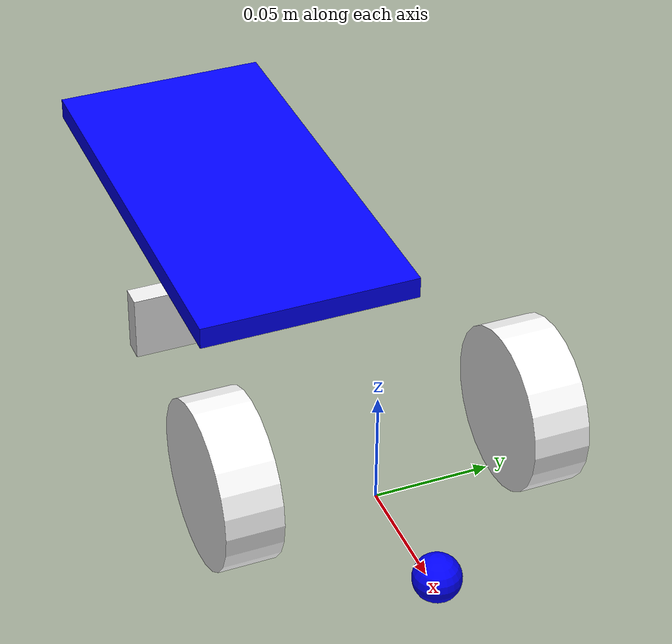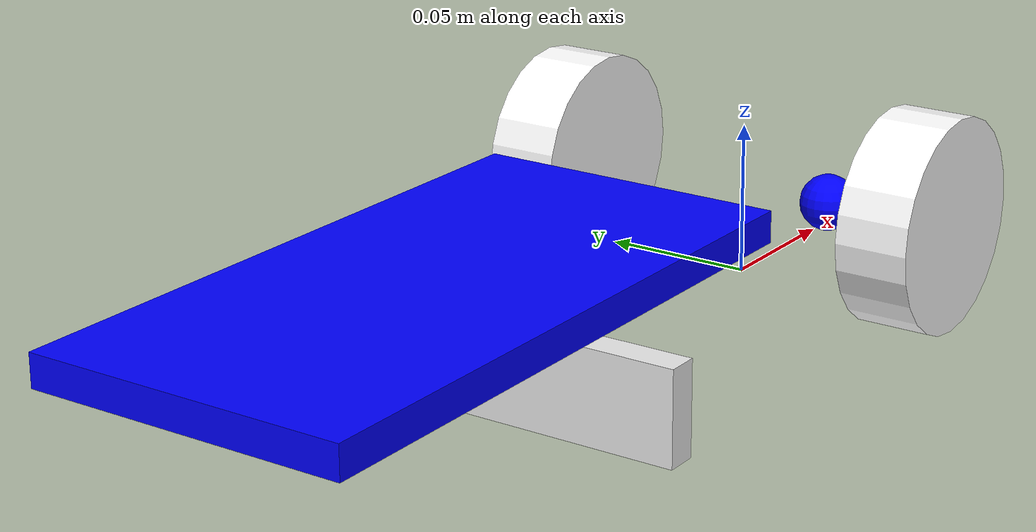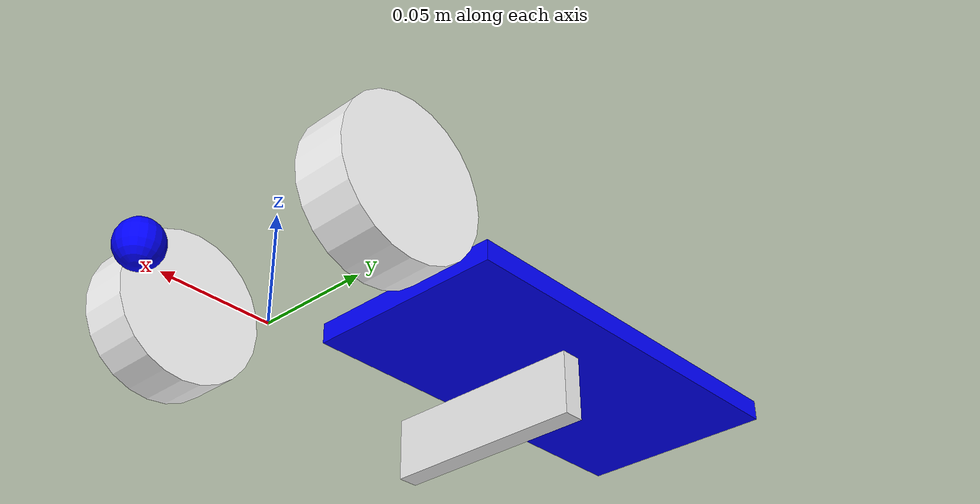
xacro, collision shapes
<?xml version="1.0"?>
<robot xmlns:xacro="http://www.ros.org/wiki/xacro" >

    <xacro:property name="wheelSeparation" value="0.13"/>
    <xacro:property name="wheelDiameter" value="0.07"/>
    <xacro:property name="wheelThickness" value="0.024"/>
    <xacro:property name="base_elevation" value="0.005"/>

    <material name="white">
        <color rgba="1 1 1 1" />
    </material>

    <material name="blue">
        <color rgba="0.2 0.2 1 1"/>
    </material>

    <material name="black">
        <color rgba="0 0 0 1"/>
    </material>

    <!-- BASE LINK -->
    <!-- se encuentra en el centro a la altura de la unión de las ruedas -->
    <link name="base_link">

    </link>

    <!-- BASE_FOOTPRINT LINK -->

    <joint name="base_footprint_joint" type="fixed">
        <parent link="base_link"/>
        <child link="base_footprint"/>
        <origin xyz="0 0 0" rpy="0 0 0"/>
    </joint>

    <link name="base_footprint">
    </link>

    <!-- CHASSIS LINK -->

    <joint name="chassis_joint" type="fixed">
        <parent link="base_link"/>
        <child link="chassis"/>
        <origin xyz="0 0 ${base_elevation}" rpy="0 0 0"/>
    </joint>

    <link name="chassis">
        <visual>
            <origin xyz="-0.17 -0.055 0.04" rpy="${-pi/2} 0 0"/>
            <geometry>
                <mesh filename="package://pibotj_r2c/meshes/base.stl" scale="0.001 0.001 0.001"/>
            </geometry>
            <material name="blue">
                <color rgba="${0/255} ${0/255} ${255/255} 1.0"/>
            </material>
        </visual>
        <collision>
            <origin xyz="-0.17 0 0.04" rpy="0 0 0"/>
            <geometry>
                <box size="0.2 0.1 0.01"/>
            </geometry>
        </collision>
        <!-- Collision tag added to stabilize the robot -->
        <collision>
            <origin xyz="0.06 0 0.002" rpy="0 0 0" />
             <geometry>
            <sphere radius="0.01" />
         </geometry>
        </collision>
        <inertial>
            <origin xyz="0 0 ${wheelDiameter-base_elevation}" rpy="0 0 0"/>
            <mass value="100"/>
            <inertia ixx="3.375" ixy="0.0" ixz="0.0" iyy="0.808" iyz="0.0" izz="2.833" />
         </inertial>
    </link>

    <gazebo reference="chassis">
        <material>Gazebo/Blue</material>
    </gazebo>

    <!-- LEFT WHEEL LINK -->

    <joint name="left_wheel_joint" type="continuous">
        <parent link="base_link"/>
        <child link="left_wheel"/>
        <origin xyz="0 ${wheelSeparation/2} ${wheelDiameter/2-base_elevation}" rpy="${-pi/2} 0 0"/>
        <axis xyz="0 0 1"/>
    </joint>

    <link name="left_wheel">
        <visual>
            <origin xyz="0 0 0.015" rpy="0 0 0"/>
            <geometry>
                <mesh filename="package://pibotj_r2c/meshes/wheel_ring.stl" scale="0.9 0.9 0.9"/>
            </geometry>
            <material name="white"/>
        </visual>
        <collision>
            <origin xyz="0 0 0" rpy="0 0 0"/>
            <geometry>
            <cylinder length="${wheelThickness}" radius="${wheelDiameter/2}"/>
        </geometry>
        </collision>
        <inertial>
            <origin xyz="0 0 0" />
            <mass value="5" />
            <inertia ixx="0.0135417" ixy="0.0" ixz="0.0"  iyy="0.0135417" iyz="0.0"  izz="0.025" />
            </inertial>
    </link>

    <gazebo reference="left_wheel">
        <material>Gazebo/Black</material>
    </gazebo>

    <!-- RIGHT WHEEL LINK -->

    <joint name="right_wheel_joint" type="continuous">
        <parent link="base_link"/>
        <child link="right_wheel"/>
        <origin xyz="0 ${-wheelSeparation/2} ${wheelDiameter/2-base_elevation}" rpy="${-pi/2} 0 0"/>
        <axis xyz="0 0 1"/>
    </joint>

    <link name="right_wheel">
        <visual>
            <origin xyz="0 0 -0.015" rpy="${pi} 0 0"/> <!-- -zy r=PI para la otra rueda-->
            <geometry>
                <mesh filename="package://pibotj_r2c/meshes/wheel_ring.stl" scale="0.9 0.9 0.9"/>
            </geometry>
            <material name="white"/>
        </visual>
        <collision>
            <origin xyz="0 0 0" rpy="0 0 0"/>
            <geometry>
                <cylinder length="${wheelThickness}" radius="${wheelDiameter/2}"/>
            </geometry>
        </collision>
        <inertial>
            <origin xyz="0 0 0" />
            <mass value="5" />
            <inertia ixx="0.0135417" ixy="0.0" ixz="0.0"  iyy="0.0135417" iyz="0.0"  izz="0.025" />
        </inertial>
    </link>

    <gazebo reference="right_wheel">
        <material>Gazebo/Black</material>
    </gazebo>

    <!-- CASTER WHEEL LINK -->

    <joint name="caster_wheel_joint" type="fixed">
        <parent link="chassis"/>
        <child link="caster_wheel"/>
        <origin xyz="-0.135 -0.01 0.006" rpy="0 ${pi} ${pi}" />
    </joint>

    <link name="caster_wheel">
        <visual>
            <origin xyz="0 0 0" rpy="0 0 0" />
            <geometry>
                <mesh filename="package://pibotj_r2c/meshes/bolaloca.stl" scale="0.001 0.001 0.001"/>
            </geometry>
        </visual>
        <collision>
            <origin xyz="0 0 0" rpy="0 0 0" />
            <geometry>
                <box size="0.01 0.1 0.03"/>
            </geometry>
        </collision>
        <inertial>
            <origin xyz="6.93889390390723E-18 -2.62037475051713E-11 -2.77710070911708E-09" rpy="0 0 0" />
            <mass value="10.0" />
            <inertia ixx="0.0006" ixy="0" ixz="0" iyy="0.0006" iyz="0" izz="0.00002" />
        </inertial>
    </link>

    <gazebo reference="caster_wheel">
        <material>Gazebo/White</material>
        <mu1 value="0.001"/>
        <mu2 value="0.001"/>
    </gazebo>

</robot>
